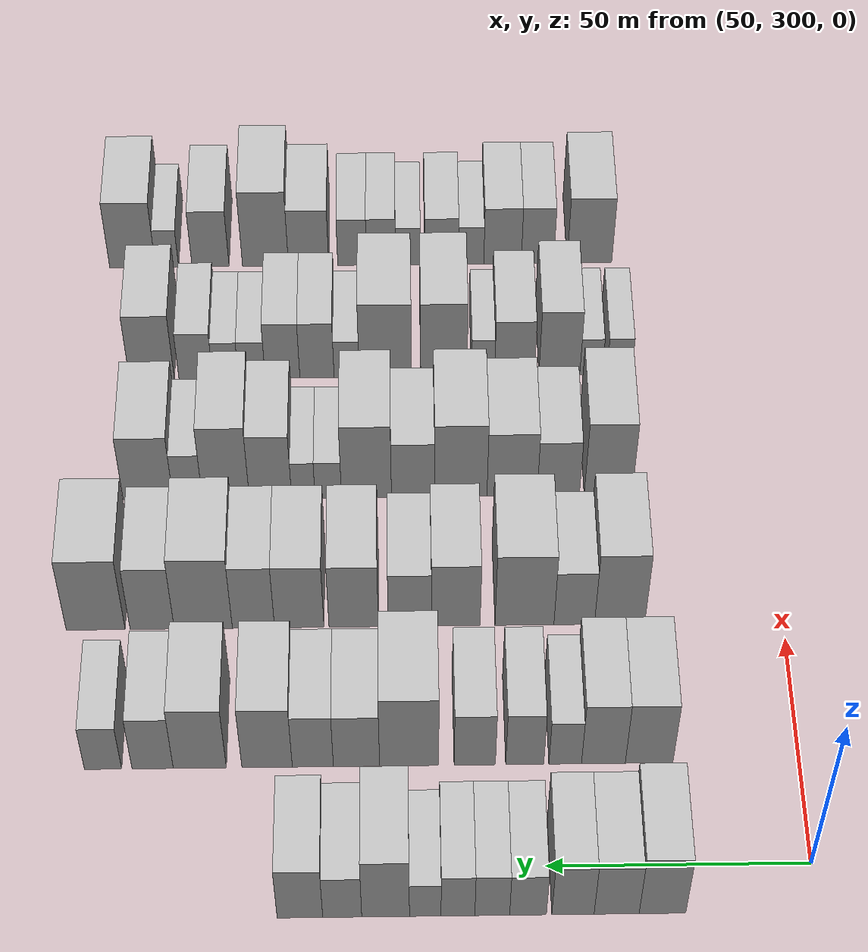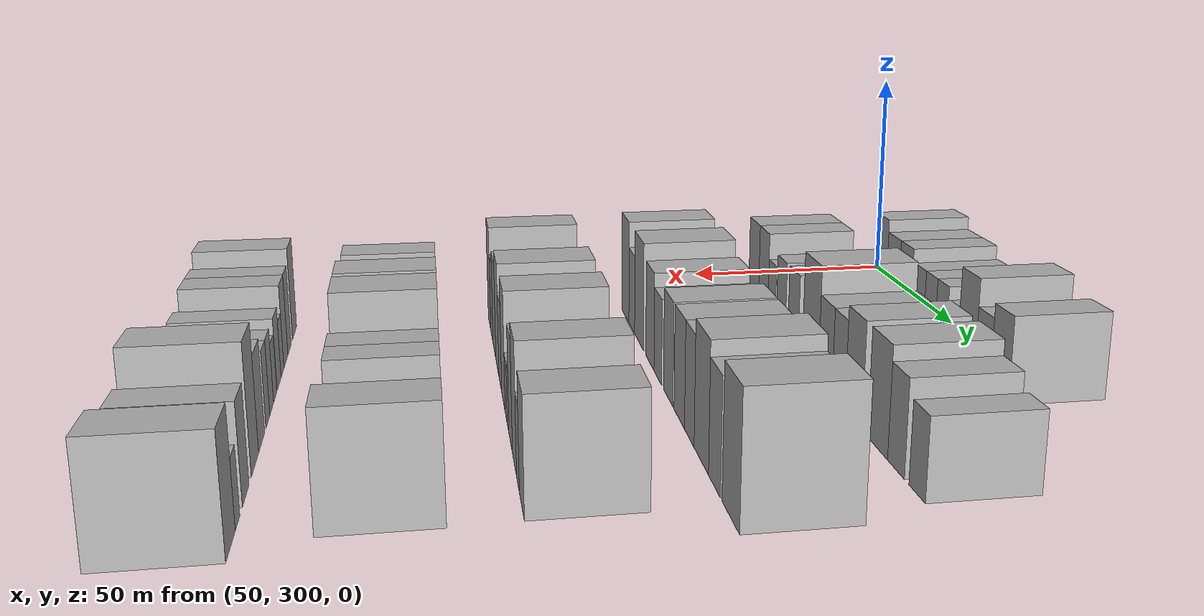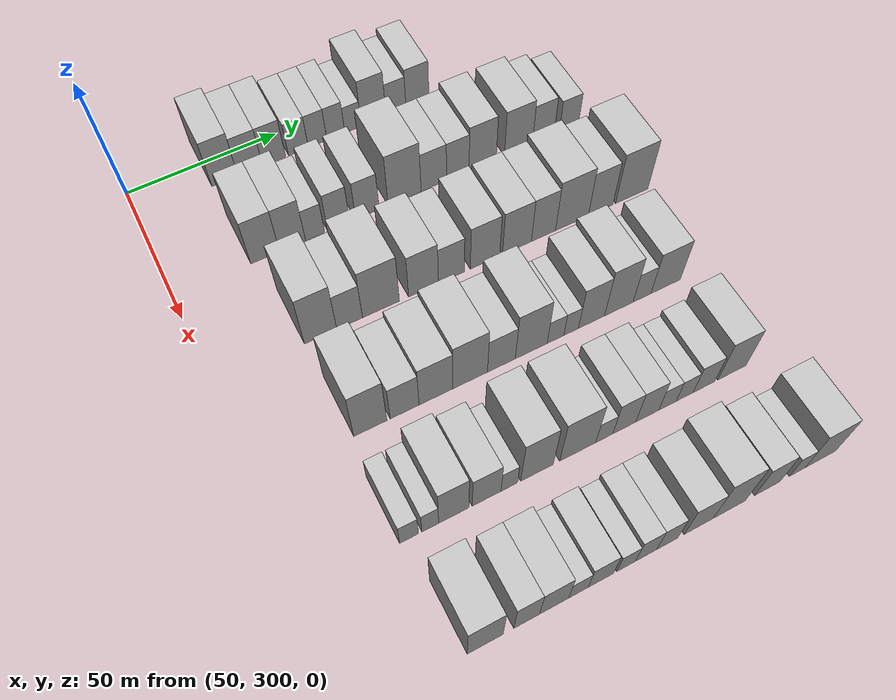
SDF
<sdf version="1.6">
 <world name="default">
  <model name="building_100">
   <static>1</static>
   <pose>50.0000 328.6975 0 0.000000 0.000000 0.000000</pose>
   <link name="link">
    <pose>0 0 10.50 0 0 0</pose>
    <collision name="collision"><geometry><box><size>20.0000 8.6695 21.0000</size></box></geometry></collision>
    <visual name="visual">
     <cast_shadows>0</cast_shadows>
     <geometry><box><size>20.0000 8.6695 21.0000</size></box></geometry>
     <material>
      <script>
       <uri>model://HANNAS_wall/materials/scripts</uri>
       <uri>model://HANNAS_wall/materials/textures</uri>
       <name>vrc/HANNAS_wall</name>
      </script>
     </material>
    </visual>
   </link>
  </model>
  <model name="building_101">
   <static>1</static>
   <pose>50.0000 337.2210 0 0.000000 0.000000 0.000000</pose>
   <link name="link">
    <pose>0 0 9.00 0 0 0</pose>
    <collision name="collision"><geometry><box><size>20.0000 8.3775 18.0000</size></box></geometry></collision>
    <visual name="visual">
     <cast_shadows>0</cast_shadows>
     <geometry><box><size>20.0000 8.3775 18.0000</size></box></geometry>
     <material>
      <script>
       <uri>model://HANNAS_wall/materials/scripts</uri>
       <uri>model://HANNAS_wall/materials/textures</uri>
       <name>vrc/HANNAS_wall</name>
      </script>
     </material>
    </visual>
   </link>
  </model>
  <model name="building_102">
   <static>1</static>
   <pose>50.0000 345.3370 0 0.000000 0.000000 0.000000</pose>
   <link name="link">
    <pose>0 0 9.00 0 0 0</pose>
    <collision name="collision"><geometry><box><size>20.0000 7.8543 18.0000</size></box></geometry></collision>
    <visual name="visual">
     <cast_shadows>0</cast_shadows>
     <geometry><box><size>20.0000 7.8543 18.0000</size></box></geometry>
     <material>
      <script>
       <uri>model://HANNAS_wall/materials/scripts</uri>
       <uri>model://HANNAS_wall/materials/textures</uri>
       <name>vrc/HANNAS_wall</name>
      </script>
     </material>
    </visual>
   </link>
  </model>
  <model name="building_103">
   <static>1</static>
   <pose>50.0000 353.6805 0 0.000000 0.000000 0.000000</pose>
   <link name="link">
    <pose>0 0 7.50 0 0 0</pose>
    <collision name="collision"><geometry><box><size>20.0000 6.8328 15.0000</size></box></geometry></collision>
    <visual name="visual">
     <cast_shadows>0</cast_shadows>
     <geometry><box><size>20.0000 6.8328 15.0000</size></box></geometry>
     <material>
      <script>
       <uri>model://HANNAS_wall/materials/scripts</uri>
       <uri>model://HANNAS_wall/materials/textures</uri>
       <name>vrc/HANNAS_wall</name>
      </script>
     </material>
    </visual>
   </link>
  </model>
  <model name="building_104">
   <static>1</static>
   <pose>50.0000 360.3275 0 0.000000 0.000000 0.000000</pose>
   <link name="link">
    <pose>0 0 7.50 0 0 0</pose>
    <collision name="collision"><geometry><box><size>20.0000 6.4612 15.0000</size></box></geometry></collision>
    <visual name="visual">
     <cast_shadows>0</cast_shadows>
     <geometry><box><size>20.0000 6.4612 15.0000</size></box></geometry>
     <material>
      <script>
       <uri>model://HANNAS_wall/materials/scripts</uri>
       <uri>model://HANNAS_wall/materials/textures</uri>
       <name>vrc/HANNAS_wall</name>
      </script>
     </material>
    </visual>
   </link>
  </model>
  <model name="building_105">
   <static>1</static>
   <pose>50.0000 366.6993 0 0.000000 0.000000 0.000000</pose>
   <link name="link">
    <pose>0 0 7.50 0 0 0</pose>
    <collision name="collision"><geometry><box><size>20.0000 6.2823 15.0000</size></box></geometry></collision>
    <visual name="visual">
     <cast_shadows>0</cast_shadows>
     <geometry><box><size>20.0000 6.2823 15.0000</size></box></geometry>
     <material>
      <script>
       <uri>model://HANNAS_wall/materials/scripts</uri>
       <uri>model://HANNAS_wall/materials/textures</uri>
       <name>vrc/HANNAS_wall</name>
      </script>
     </material>
    </visual>
   </link>
  </model>
  <model name="building_106">
   <static>1</static>
   <pose>50.0000 372.7689 0 0.000000 0.000000 0.000000</pose>
   <link name="link">
    <pose>0 0 6.00 0 0 0</pose>
    <collision name="collision"><geometry><box><size>20.0000 5.8569 12.0000</size></box></geometry></collision>
    <visual name="visual">
     <cast_shadows>0</cast_shadows>
     <geometry><box><size>20.0000 5.8569 12.0000</size></box></geometry>
     <material>
      <script>
       <uri>model://HANNAS_wall/materials/scripts</uri>
       <uri>model://HANNAS_wall/materials/textures</uri>
       <name>vrc/HANNAS_wall</name>
      </script>
     </material>
    </visual>
   </link>
  </model>
  <model name="building_107">
   <static>1</static>
   <pose>50.0000 380.1270 0 0.000000 0.000000 0.000000</pose>
   <link name="link">
    <pose>0 0 10.50 0 0 0</pose>
    <collision name="collision"><geometry><box><size>20.0000 8.8593 21.0000</size></box></geometry></collision>
    <visual name="visual">
     <cast_shadows>0</cast_shadows>
     <geometry><box><size>20.0000 8.8593 21.0000</size></box></geometry>
     <material>
      <script>
       <uri>model://HANNAS_wall/materials/scripts</uri>
       <uri>model://HANNAS_wall/materials/textures</uri>
       <name>vrc/HANNAS_wall</name>
      </script>
     </material>
    </visual>
   </link>
  </model>
  <model name="building_108">
   <static>1</static>
   <pose>50.0000 388.1756 0 0.000000 0.000000 0.000000</pose>
   <link name="link">
    <pose>0 0 7.50 0 0 0</pose>
    <collision name="collision"><geometry><box><size>20.0000 7.2377 15.0000</size></box></geometry></collision>
    <visual name="visual">
     <cast_shadows>0</cast_shadows>
     <geometry><box><size>20.0000 7.2377 15.0000</size></box></geometry>
     <material>
      <script>
       <uri>model://HANNAS_wall/materials/scripts</uri>
       <uri>model://HANNAS_wall/materials/textures</uri>
       <name>vrc/HANNAS_wall</name>
      </script>
     </material>
    </visual>
   </link>
  </model>
  <model name="building_109">
   <static>1</static>
   <pose>50.0000 396.0186 0 0.000000 0.000000 0.000000</pose>
   <link name="link">
    <pose>0 0 9.00 0 0 0</pose>
    <collision name="collision"><geometry><box><size>20.0000 8.4483 18.0000</size></box></geometry></collision>
    <visual name="visual">
     <cast_shadows>0</cast_shadows>
     <geometry><box><size>20.0000 8.4483 18.0000</size></box></geometry>
     <material>
      <script>
       <uri>model://HANNAS_wall/materials/scripts</uri>
       <uri>model://HANNAS_wall/materials/textures</uri>
       <name>vrc/HANNAS_wall</name>
      </script>
     </material>
    </visual>
   </link>
  </model>
  <model name="building_217">
   <static>1</static>
   <pose>82.0000 329.0815 0 0.000000 0.000000 0.000000</pose>
   <link name="link">
    <pose>0 0 10.50 0 0 0</pose>
    <collision name="collision"><geometry><box><size>20.0000 9.2128 21.0000</size></box></geometry></collision>
    <visual name="visual">
     <cast_shadows>0</cast_shadows>
     <geometry><box><size>20.0000 9.2128 21.0000</size></box></geometry>
     <material>
      <script>
       <uri>model://HANNAS_wall/materials/scripts</uri>
       <uri>model://HANNAS_wall/materials/textures</uri>
       <name>vrc/HANNAS_wall</name>
      </script>
     </material>
    </visual>
   </link>
  </model>
  <model name="building_218">
   <static>1</static>
   <pose>82.0000 337.9273 0 0.000000 0.000000 0.000000</pose>
   <link name="link">
    <pose>0 0 10.50 0 0 0</pose>
    <collision name="collision"><geometry><box><size>20.0000 8.4788 21.0000</size></box></geometry></collision>
    <visual name="visual">
     <cast_shadows>0</cast_shadows>
     <geometry><box><size>20.0000 8.4788 21.0000</size></box></geometry>
     <material>
      <script>
       <uri>model://HANNAS_wall/materials/scripts</uri>
       <uri>model://HANNAS_wall/materials/textures</uri>
       <name>vrc/HANNAS_wall</name>
      </script>
     </material>
    </visual>
   </link>
  </model>
  <model name="building_219">
   <static>1</static>
   <pose>82.0000 345.3121 0 0.000000 0.000000 0.000000</pose>
   <link name="link">
    <pose>0 0 7.50 0 0 0</pose>
    <collision name="collision"><geometry><box><size>20.0000 6.2908 15.0000</size></box></geometry></collision>
    <visual name="visual">
     <cast_shadows>0</cast_shadows>
     <geometry><box><size>20.0000 6.2908 15.0000</size></box></geometry>
     <material>
      <script>
       <uri>model://HANNAS_wall/materials/scripts</uri>
       <uri>model://HANNAS_wall/materials/textures</uri>
       <name>vrc/HANNAS_wall</name>
      </script>
     </material>
    </visual>
   </link>
  </model>
  <model name="building_220">
   <static>1</static>
   <pose>82.0000 353.1298 0 0.000000 0.000000 0.000000</pose>
   <link name="link">
    <pose>0 0 9.00 0 0 0</pose>
    <collision name="collision"><geometry><box><size>20.0000 7.3447 18.0000</size></box></geometry></collision>
    <visual name="visual">
     <cast_shadows>0</cast_shadows>
     <geometry><box><size>20.0000 7.3447 18.0000</size></box></geometry>
     <material>
      <script>
       <uri>model://HANNAS_wall/materials/scripts</uri>
       <uri>model://HANNAS_wall/materials/textures</uri>
       <name>vrc/HANNAS_wall</name>
      </script>
     </material>
    </visual>
   </link>
  </model>
  <model name="building_221">
   <static>1</static>
   <pose>82.0000 362.7860 0 0.000000 0.000000 0.000000</pose>
   <link name="link">
    <pose>0 0 9.00 0 0 0</pose>
    <collision name="collision"><geometry><box><size>20.0000 7.9676 18.0000</size></box></geometry></collision>
    <visual name="visual">
     <cast_shadows>0</cast_shadows>
     <geometry><box><size>20.0000 7.9676 18.0000</size></box></geometry>
     <material>
      <script>
       <uri>model://HANNAS_wall/materials/scripts</uri>
       <uri>model://HANNAS_wall/materials/textures</uri>
       <name>vrc/HANNAS_wall</name>
      </script>
     </material>
    </visual>
   </link>
  </model>
  <model name="building_222">
   <static>1</static>
   <pose>82.0000 375.4626 0 0.000000 0.000000 0.000000</pose>
   <link name="link">
    <pose>0 0 12.00 0 0 0</pose>
    <collision name="collision"><geometry><box><size>20.0000 11.3857 24.0000</size></box></geometry></collision>
    <visual name="visual">
     <cast_shadows>0</cast_shadows>
     <geometry><box><size>20.0000 11.3857 24.0000</size></box></geometry>
     <material>
      <script>
       <uri>model://HANNAS_wall/materials/scripts</uri>
       <uri>model://HANNAS_wall/materials/textures</uri>
       <name>vrc/HANNAS_wall</name>
      </script>
     </material>
    </visual>
   </link>
  </model>
  <model name="building_223">
   <static>1</static>
   <pose>82.0000 385.6222 0 0.000000 0.000000 0.000000</pose>
   <link name="link">
    <pose>0 0 9.00 0 0 0</pose>
    <collision name="collision"><geometry><box><size>20.0000 8.9335 18.0000</size></box></geometry></collision>
    <visual name="visual">
     <cast_shadows>0</cast_shadows>
     <geometry><box><size>20.0000 8.9335 18.0000</size></box></geometry>
     <material>
      <script>
       <uri>model://HANNAS_wall/materials/scripts</uri>
       <uri>model://HANNAS_wall/materials/textures</uri>
       <name>vrc/HANNAS_wall</name>
      </script>
     </material>
    </visual>
   </link>
  </model>
  <model name="building_224">
   <static>1</static>
   <pose>82.0000 394.0517 0 0.000000 0.000000 0.000000</pose>
   <link name="link">
    <pose>0 0 9.00 0 0 0</pose>
    <collision name="collision"><geometry><box><size>20.0000 7.9255 18.0000</size></box></geometry></collision>
    <visual name="visual">
     <cast_shadows>0</cast_shadows>
     <geometry><box><size>20.0000 7.9255 18.0000</size></box></geometry>
     <material>
      <script>
       <uri>model://HANNAS_wall/materials/scripts</uri>
       <uri>model://HANNAS_wall/materials/textures</uri>
       <name>vrc/HANNAS_wall</name>
      </script>
     </material>
    </visual>
   </link>
  </model>
  <model name="building_225">
   <static>1</static>
   <pose>82.0000 402.8791 0 0.000000 0.000000 0.000000</pose>
   <link name="link">
    <pose>0 0 10.50 0 0 0</pose>
    <collision name="collision"><geometry><box><size>20.0000 9.7292 21.0000</size></box></geometry></collision>
    <visual name="visual">
     <cast_shadows>0</cast_shadows>
     <geometry><box><size>20.0000 9.7292 21.0000</size></box></geometry>
     <material>
      <script>
       <uri>model://HANNAS_wall/materials/scripts</uri>
       <uri>model://HANNAS_wall/materials/textures</uri>
       <name>vrc/HANNAS_wall</name>
      </script>
     </material>
    </visual>
   </link>
  </model>
  <model name="building_226">
   <static>1</static>
   <pose>82.0000 415.8628 0 0.000000 0.000000 0.000000</pose>
   <link name="link">
    <pose>0 0 10.50 0 0 0</pose>
    <collision name="collision"><geometry><box><size>20.0000 10.2383 21.0000</size></box></geometry></collision>
    <visual name="visual">
     <cast_shadows>0</cast_shadows>
     <geometry><box><size>20.0000 10.2383 21.0000</size></box></geometry>
     <material>
      <script>
       <uri>model://HANNAS_wall/materials/scripts</uri>
       <uri>model://HANNAS_wall/materials/textures</uri>
       <name>vrc/HANNAS_wall</name>
      </script>
     </material>
    </visual>
   </link>
  </model>
  <model name="building_227">
   <static>1</static>
   <pose>82.0000 424.9639 0 0.000000 0.000000 0.000000</pose>
   <link name="link">
    <pose>0 0 9.00 0 0 0</pose>
    <collision name="collision"><geometry><box><size>20.0000 7.9639 18.0000</size></box></geometry></collision>
    <visual name="visual">
     <cast_shadows>0</cast_shadows>
     <geometry><box><size>20.0000 7.9639 18.0000</size></box></geometry>
     <material>
      <script>
       <uri>model://HANNAS_wall/materials/scripts</uri>
       <uri>model://HANNAS_wall/materials/textures</uri>
       <name>vrc/HANNAS_wall</name>
      </script>
     </material>
    </visual>
   </link>
  </model>
  <model name="building_228">
   <static>1</static>
   <pose>82.0000 434.5318 0 0.000000 0.000000 0.000000</pose>
   <link name="link">
    <pose>0 0 7.50 0 0 0</pose>
    <collision name="collision"><geometry><box><size>20.0000 7.1718 15.0000</size></box></geometry></collision>
    <visual name="visual">
     <cast_shadows>0</cast_shadows>
     <geometry><box><size>20.0000 7.1718 15.0000</size></box></geometry>
     <material>
      <script>
       <uri>model://HANNAS_wall/materials/scripts</uri>
       <uri>model://HANNAS_wall/materials/textures</uri>
       <name>vrc/HANNAS_wall</name>
      </script>
     </material>
    </visual>
   </link>
  </model>
  <model name="building_335">
   <static>1</static>
   <pose>114.0000 332.9110 0 0.000000 0.000000 0.000000</pose>
   <link name="link">
    <pose>0 0 12.00 0 0 0</pose>
    <collision name="collision"><geometry><box><size>20.0000 10.1101 24.0000</size></box></geometry></collision>
    <visual name="visual">
     <cast_shadows>0</cast_shadows>
     <geometry><box><size>20.0000 10.1101 24.0000</size></box></geometry>
     <material>
      <script>
       <uri>model://HANNAS_wall/materials/scripts</uri>
       <uri>model://HANNAS_wall/materials/textures</uri>
       <name>vrc/HANNAS_wall</name>
      </script>
     </material>
    </visual>
   </link>
  </model>
  <model name="building_336">
   <static>1</static>
   <pose>114.0000 342.0369 0 0.000000 0.000000 0.000000</pose>
   <link name="link">
    <pose>0 0 9.00 0 0 0</pose>
    <collision name="collision"><geometry><box><size>20.0000 8.1418 18.0000</size></box></geometry></collision>
    <visual name="visual">
     <cast_shadows>0</cast_shadows>
     <geometry><box><size>20.0000 8.1418 18.0000</size></box></geometry>
     <material>
      <script>
       <uri>model://HANNAS_wall/materials/scripts</uri>
       <uri>model://HANNAS_wall/materials/textures</uri>
       <name>vrc/HANNAS_wall</name>
      </script>
     </material>
    </visual>
   </link>
  </model>
  <model name="building_337">
   <static>1</static>
   <pose>114.0000 352.0219 0 0.000000 0.000000 0.000000</pose>
   <link name="link">
    <pose>0 0 12.00 0 0 0</pose>
    <collision name="collision"><geometry><box><size>20.0000 11.8281 24.0000</size></box></geometry></collision>
    <visual name="visual">
     <cast_shadows>0</cast_shadows>
     <geometry><box><size>20.0000 11.8281 24.0000</size></box></geometry>
     <material>
      <script>
       <uri>model://HANNAS_wall/materials/scripts</uri>
       <uri>model://HANNAS_wall/materials/textures</uri>
       <name>vrc/HANNAS_wall</name>
      </script>
     </material>
    </visual>
   </link>
  </model>
  <model name="building_338">
   <static>1</static>
   <pose>114.0000 365.8304 0 0.000000 0.000000 0.000000</pose>
   <link name="link">
    <pose>0 0 10.50 0 0 0</pose>
    <collision name="collision"><geometry><box><size>20.0000 9.7891 21.0000</size></box></geometry></collision>
    <visual name="visual">
     <cast_shadows>0</cast_shadows>
     <geometry><box><size>20.0000 9.7891 21.0000</size></box></geometry>
     <material>
      <script>
       <uri>model://HANNAS_wall/materials/scripts</uri>
       <uri>model://HANNAS_wall/materials/textures</uri>
       <name>vrc/HANNAS_wall</name>
      </script>
     </material>
    </visual>
   </link>
  </model>
  <model name="building_339">
   <static>1</static>
   <pose>114.0000 375.0302 0 0.000000 0.000000 0.000000</pose>
   <link name="link">
    <pose>0 0 9.00 0 0 0</pose>
    <collision name="collision"><geometry><box><size>20.0000 8.6104 18.0000</size></box></geometry></collision>
    <visual name="visual">
     <cast_shadows>0</cast_shadows>
     <geometry><box><size>20.0000 8.6104 18.0000</size></box></geometry>
     <material>
      <script>
       <uri>model://HANNAS_wall/materials/scripts</uri>
       <uri>model://HANNAS_wall/materials/textures</uri>
       <name>vrc/HANNAS_wall</name>
      </script>
     </material>
    </visual>
   </link>
  </model>
  <model name="building_340">
   <static>1</static>
   <pose>114.0000 386.2902 0 0.000000 0.000000 0.000000</pose>
   <link name="link">
    <pose>0 0 10.50 0 0 0</pose>
    <collision name="collision"><geometry><box><size>20.0000 9.9096 21.0000</size></box></geometry></collision>
    <visual name="visual">
     <cast_shadows>0</cast_shadows>
     <geometry><box><size>20.0000 9.9096 21.0000</size></box></geometry>
     <material>
      <script>
       <uri>model://HANNAS_wall/materials/scripts</uri>
       <uri>model://HANNAS_wall/materials/textures</uri>
       <name>vrc/HANNAS_wall</name>
      </script>
     </material>
    </visual>
   </link>
  </model>
  <model name="building_341">
   <static>1</static>
   <pose>114.0000 397.2032 0 0.000000 0.000000 0.000000</pose>
   <link name="link">
    <pose>0 0 10.50 0 0 0</pose>
    <collision name="collision"><geometry><box><size>20.0000 9.9166 21.0000</size></box></geometry></collision>
    <visual name="visual">
     <cast_shadows>0</cast_shadows>
     <geometry><box><size>20.0000 9.9166 21.0000</size></box></geometry>
     <material>
      <script>
       <uri>model://HANNAS_wall/materials/scripts</uri>
       <uri>model://HANNAS_wall/materials/textures</uri>
       <name>vrc/HANNAS_wall</name>
      </script>
     </material>
    </visual>
   </link>
  </model>
  <model name="building_342">
   <static>1</static>
   <pose>114.0000 406.3875 0 0.000000 0.000000 0.000000</pose>
   <link name="link">
    <pose>0 0 10.50 0 0 0</pose>
    <collision name="collision"><geometry><box><size>20.0000 8.4520 21.0000</size></box></geometry></collision>
    <visual name="visual">
     <cast_shadows>0</cast_shadows>
     <geometry><box><size>20.0000 8.4520 21.0000</size></box></geometry>
     <material>
      <script>
       <uri>model://HANNAS_wall/materials/scripts</uri>
       <uri>model://HANNAS_wall/materials/textures</uri>
       <name>vrc/HANNAS_wall</name>
      </script>
     </material>
    </visual>
   </link>
  </model>
  <model name="building_343">
   <static>1</static>
   <pose>114.0000 416.4410 0 0.000000 0.000000 0.000000</pose>
   <link name="link">
    <pose>0 0 12.00 0 0 0</pose>
    <collision name="collision"><geometry><box><size>20.0000 11.6551 24.0000</size></box></geometry></collision>
    <visual name="visual">
     <cast_shadows>0</cast_shadows>
     <geometry><box><size>20.0000 11.6551 24.0000</size></box></geometry>
     <material>
      <script>
       <uri>model://HANNAS_wall/materials/scripts</uri>
       <uri>model://HANNAS_wall/materials/textures</uri>
       <name>vrc/HANNAS_wall</name>
      </script>
     </material>
    </visual>
   </link>
  </model>
  <model name="building_344">
   <static>1</static>
   <pose>114.0000 426.6911 0 0.000000 0.000000 0.000000</pose>
   <link name="link">
    <pose>0 0 10.50 0 0 0</pose>
    <collision name="collision"><geometry><box><size>20.0000 8.8450 21.0000</size></box></geometry></collision>
    <visual name="visual">
     <cast_shadows>0</cast_shadows>
     <geometry><box><size>20.0000 8.8450 21.0000</size></box></geometry>
     <material>
      <script>
       <uri>model://HANNAS_wall/materials/scripts</uri>
       <uri>model://HANNAS_wall/materials/textures</uri>
       <name>vrc/HANNAS_wall</name>
      </script>
     </material>
    </visual>
   </link>
  </model>
  <model name="building_345">
   <static>1</static>
   <pose>114.0000 438.0168 0 0.000000 0.000000 0.000000</pose>
   <link name="link">
    <pose>0 0 12.00 0 0 0</pose>
    <collision name="collision"><geometry><box><size>20.0000 11.8065 24.0000</size></box></geometry></collision>
    <visual name="visual">
     <cast_shadows>0</cast_shadows>
     <geometry><box><size>20.0000 11.8065 24.0000</size></box></geometry>
     <material>
      <script>
       <uri>model://HANNAS_wall/materials/scripts</uri>
       <uri>model://HANNAS_wall/materials/textures</uri>
       <name>vrc/HANNAS_wall</name>
      </script>
     </material>
    </visual>
   </link>
  </model>
  <model name="building_453">
   <static>1</static>
   <pose>146.0000 333.4234 0 0.000000 0.000000 0.000000</pose>
   <link name="link">
    <pose>0 0 12.00 0 0 0</pose>
    <collision name="collision"><geometry><box><size>20.0000 9.9732 24.0000</size></box></geometry></collision>
    <visual name="visual">
     <cast_shadows>0</cast_shadows>
     <geometry><box><size>20.0000 9.9732 24.0000</size></box></geometry>
     <material>
      <script>
       <uri>model://HANNAS_wall/materials/scripts</uri>
       <uri>model://HANNAS_wall/materials/textures</uri>
       <name>vrc/HANNAS_wall</name>
      </script>
     </material>
    </visual>
   </link>
  </model>
  <model name="building_454">
   <static>1</static>
   <pose>146.0000 343.8095 0 0.000000 0.000000 0.000000</pose>
   <link name="link">
    <pose>0 0 9.00 0 0 0</pose>
    <collision name="collision"><geometry><box><size>20.0000 8.7991 18.0000</size></box></geometry></collision>
    <visual name="visual">
     <cast_shadows>0</cast_shadows>
     <geometry><box><size>20.0000 8.7991 18.0000</size></box></geometry>
     <material>
      <script>
       <uri>model://HANNAS_wall/materials/scripts</uri>
       <uri>model://HANNAS_wall/materials/textures</uri>
       <name>vrc/HANNAS_wall</name>
      </script>
     </material>
    </visual>
   </link>
  </model>
  <model name="building_455">
   <static>1</static>
   <pose>146.0000 353.4447 0 0.000000 0.000000 0.000000</pose>
   <link name="link">
    <pose>0 0 10.50 0 0 0</pose>
    <collision name="collision"><geometry><box><size>20.0000 10.4712 21.0000</size></box></geometry></collision>
    <visual name="visual">
     <cast_shadows>0</cast_shadows>
     <geometry><box><size>20.0000 10.4712 21.0000</size></box></geometry>
     <material>
      <script>
       <uri>model://HANNAS_wall/materials/scripts</uri>
       <uri>model://HANNAS_wall/materials/textures</uri>
       <name>vrc/HANNAS_wall</name>
      </script>
     </material>
    </visual>
   </link>
  </model>
  <model name="building_456">
   <static>1</static>
   <pose>146.0000 364.1417 0 0.000000 0.000000 0.000000</pose>
   <link name="link">
    <pose>0 0 12.00 0 0 0</pose>
    <collision name="collision"><geometry><box><size>20.0000 10.9227 24.0000</size></box></geometry></collision>
    <visual name="visual">
     <cast_shadows>0</cast_shadows>
     <geometry><box><size>20.0000 10.9227 24.0000</size></box></geometry>
     <material>
      <script>
       <uri>model://HANNAS_wall/materials/scripts</uri>
       <uri>model://HANNAS_wall/materials/textures</uri>
       <name>vrc/HANNAS_wall</name>
      </script>
     </material>
    </visual>
   </link>
  </model>
  <model name="building_457">
   <static>1</static>
   <pose>146.0000 374.0794 0 0.000000 0.000000 0.000000</pose>
   <link name="link">
    <pose>0 0 9.00 0 0 0</pose>
    <collision name="collision"><geometry><box><size>20.0000 8.9527 18.0000</size></box></geometry></collision>
    <visual name="visual">
     <cast_shadows>0</cast_shadows>
     <geometry><box><size>20.0000 8.9527 18.0000</size></box></geometry>
     <material>
      <script>
       <uri>model://HANNAS_wall/materials/scripts</uri>
       <uri>model://HANNAS_wall/materials/textures</uri>
       <name>vrc/HANNAS_wall</name>
      </script>
     </material>
    </visual>
   </link>
  </model>
  <model name="building_458">
   <static>1</static>
   <pose>146.0000 383.7531 0 0.000000 0.000000 0.000000</pose>
   <link name="link">
    <pose>0 0 12.00 0 0 0</pose>
    <collision name="collision"><geometry><box><size>20.0000 10.3947 24.0000</size></box></geometry></collision>
    <visual name="visual">
     <cast_shadows>0</cast_shadows>
     <geometry><box><size>20.0000 10.3947 24.0000</size></box></geometry>
     <material>
      <script>
       <uri>model://HANNAS_wall/materials/scripts</uri>
       <uri>model://HANNAS_wall/materials/textures</uri>
       <name>vrc/HANNAS_wall</name>
      </script>
     </material>
    </visual>
   </link>
  </model>
  <model name="building_459">
   <static>1</static>
   <pose>146.0000 391.7022 0 0.000000 0.000000 0.000000</pose>
   <link name="link">
    <pose>0 0 6.00 0 0 0</pose>
    <collision name="collision"><geometry><box><size>20.0000 5.5035 12.0000</size></box></geometry></collision>
    <visual name="visual">
     <cast_shadows>0</cast_shadows>
     <geometry><box><size>20.0000 5.5035 12.0000</size></box></geometry>
     <material>
      <script>
       <uri>model://HANNAS_wall/materials/scripts</uri>
       <uri>model://HANNAS_wall/materials/textures</uri>
       <name>vrc/HANNAS_wall</name>
      </script>
     </material>
    </visual>
   </link>
  </model>
  <model name="building_460">
   <static>1</static>
   <pose>146.0000 396.8880 0 0.000000 0.000000 0.000000</pose>
   <link name="link">
    <pose>0 0 6.00 0 0 0</pose>
    <collision name="collision"><geometry><box><size>20.0000 4.8681 12.0000</size></box></geometry></collision>
    <visual name="visual">
     <cast_shadows>0</cast_shadows>
     <geometry><box><size>20.0000 4.8681 12.0000</size></box></geometry>
     <material>
      <script>
       <uri>model://HANNAS_wall/materials/scripts</uri>
       <uri>model://HANNAS_wall/materials/textures</uri>
       <name>vrc/HANNAS_wall</name>
      </script>
     </material>
    </visual>
   </link>
  </model>
  <model name="building_461">
   <static>1</static>
   <pose>146.0000 403.7211 0 0.000000 0.000000 0.000000</pose>
   <link name="link">
    <pose>0 0 10.50 0 0 0</pose>
    <collision name="collision"><geometry><box><size>20.0000 8.7981 21.0000</size></box></geometry></collision>
    <visual name="visual">
     <cast_shadows>0</cast_shadows>
     <geometry><box><size>20.0000 8.7981 21.0000</size></box></geometry>
     <material>
      <script>
       <uri>model://HANNAS_wall/materials/scripts</uri>
       <uri>model://HANNAS_wall/materials/textures</uri>
       <name>vrc/HANNAS_wall</name>
      </script>
     </material>
    </visual>
   </link>
  </model>
  <model name="building_462">
   <static>1</static>
   <pose>146.0000 413.0103 0 0.000000 0.000000 0.000000</pose>
   <link name="link">
    <pose>0 0 12.00 0 0 0</pose>
    <collision name="collision"><geometry><box><size>20.0000 9.7803 24.0000</size></box></geometry></collision>
    <visual name="visual">
     <cast_shadows>0</cast_shadows>
     <geometry><box><size>20.0000 9.7803 24.0000</size></box></geometry>
     <material>
      <script>
       <uri>model://HANNAS_wall/materials/scripts</uri>
       <uri>model://HANNAS_wall/materials/textures</uri>
       <name>vrc/HANNAS_wall</name>
      </script>
     </material>
    </visual>
   </link>
  </model>
  <model name="building_463">
   <static>1</static>
   <pose>146.0000 420.9390 0 0.000000 0.000000 0.000000</pose>
   <link name="link">
    <pose>0 0 7.50 0 0 0</pose>
    <collision name="collision"><geometry><box><size>20.0000 6.0770 15.0000</size></box></geometry></collision>
    <visual name="visual">
     <cast_shadows>0</cast_shadows>
     <geometry><box><size>20.0000 6.0770 15.0000</size></box></geometry>
     <material>
      <script>
       <uri>model://HANNAS_wall/materials/scripts</uri>
       <uri>model://HANNAS_wall/materials/textures</uri>
       <name>vrc/HANNAS_wall</name>
      </script>
     </material>
    </visual>
   </link>
  </model>
  <model name="building_464">
   <static>1</static>
   <pose>146.0000 429.1658 0 0.000000 0.000000 0.000000</pose>
   <link name="link">
    <pose>0 0 10.50 0 0 0</pose>
    <collision name="collision"><geometry><box><size>20.0000 10.3766 21.0000</size></box></geometry></collision>
    <visual name="visual">
     <cast_shadows>0</cast_shadows>
     <geometry><box><size>20.0000 10.3766 21.0000</size></box></geometry>
     <material>
      <script>
       <uri>model://HANNAS_wall/materials/scripts</uri>
       <uri>model://HANNAS_wall/materials/textures</uri>
       <name>vrc/HANNAS_wall</name>
      </script>
     </material>
    </visual>
   </link>
  </model>
  <model name="building_566">
   <static>1</static>
   <pose>178.0000 329.2283 0 0.000000 0.000000 0.000000</pose>
   <link name="link">
    <pose>0 0 6.00 0 0 0</pose>
    <collision name="collision"><geometry><box><size>20.0000 5.3661 12.0000</size></box></geometry></collision>
    <visual name="visual">
     <cast_shadows>0</cast_shadows>
     <geometry><box><size>20.0000 5.3661 12.0000</size></box></geometry>
     <material>
      <script>
       <uri>model://HANNAS_wall/materials/scripts</uri>
       <uri>model://HANNAS_wall/materials/textures</uri>
       <name>vrc/HANNAS_wall</name>
      </script>
     </material>
    </visual>
   </link>
  </model>
  <model name="building_567">
   <static>1</static>
   <pose>178.0000 335.3362 0 0.000000 0.000000 0.000000</pose>
   <link name="link">
    <pose>0 0 6.00 0 0 0</pose>
    <collision name="collision"><geometry><box><size>20.0000 4.8497 12.0000</size></box></geometry></collision>
    <visual name="visual">
     <cast_shadows>0</cast_shadows>
     <geometry><box><size>20.0000 4.8497 12.0000</size></box></geometry>
     <material>
      <script>
       <uri>model://HANNAS_wall/materials/scripts</uri>
       <uri>model://HANNAS_wall/materials/textures</uri>
       <name>vrc/HANNAS_wall</name>
      </script>
     </material>
    </visual>
   </link>
  </model>
  <model name="building_568">
   <static>1</static>
   <pose>178.0000 342.1674 0 0.000000 0.000000 0.000000</pose>
   <link name="link">
    <pose>0 0 10.50 0 0 0</pose>
    <collision name="collision"><geometry><box><size>20.0000 8.8128 21.0000</size></box></geometry></collision>
    <visual name="visual">
     <cast_shadows>0</cast_shadows>
     <geometry><box><size>20.0000 8.8128 21.0000</size></box></geometry>
     <material>
      <script>
       <uri>model://HANNAS_wall/materials/scripts</uri>
       <uri>model://HANNAS_wall/materials/textures</uri>
       <name>vrc/HANNAS_wall</name>
      </script>
     </material>
    </visual>
   </link>
  </model>
  <model name="building_569">
   <static>1</static>
   <pose>178.0000 351.8618 0 0.000000 0.000000 0.000000</pose>
   <link name="link">
    <pose>0 0 9.00 0 0 0</pose>
    <collision name="collision"><geometry><box><size>20.0000 8.5759 18.0000</size></box></geometry></collision>
    <visual name="visual">
     <cast_shadows>0</cast_shadows>
     <geometry><box><size>20.0000 8.5759 18.0000</size></box></geometry>
     <material>
      <script>
       <uri>model://HANNAS_wall/materials/scripts</uri>
       <uri>model://HANNAS_wall/materials/textures</uri>
       <name>vrc/HANNAS_wall</name>
      </script>
     </material>
    </visual>
   </link>
  </model>
  <model name="building_570">
   <static>1</static>
   <pose>178.0000 358.6403 0 0.000000 0.000000 0.000000</pose>
   <link name="link">
    <pose>0 0 6.00 0 0 0</pose>
    <collision name="collision"><geometry><box><size>20.0000 4.9813 12.0000</size></box></geometry></collision>
    <visual name="visual">
     <cast_shadows>0</cast_shadows>
     <geometry><box><size>20.0000 4.9813 12.0000</size></box></geometry>
     <material>
      <script>
       <uri>model://HANNAS_wall/materials/scripts</uri>
       <uri>model://HANNAS_wall/materials/textures</uri>
       <name>vrc/HANNAS_wall</name>
      </script>
     </material>
    </visual>
   </link>
  </model>
  <model name="building_571">
   <static>1</static>
   <pose>178.0000 367.1060 0 0.000000 0.000000 0.000000</pose>
   <link name="link">
    <pose>0 0 12.00 0 0 0</pose>
    <collision name="collision"><geometry><box><size>20.0000 9.9500 24.0000</size></box></geometry></collision>
    <visual name="visual">
     <cast_shadows>0</cast_shadows>
     <geometry><box><size>20.0000 9.9500 24.0000</size></box></geometry>
     <material>
      <script>
       <uri>model://HANNAS_wall/materials/scripts</uri>
       <uri>model://HANNAS_wall/materials/textures</uri>
       <name>vrc/HANNAS_wall</name>
      </script>
     </material>
    </visual>
   </link>
  </model>
  <model name="building_572">
   <static>1</static>
   <pose>178.0000 379.7084 0 0.000000 0.000000 0.000000</pose>
   <link name="link">
    <pose>0 0 12.00 0 0 0</pose>
    <collision name="collision"><geometry><box><size>20.0000 11.2548 24.0000</size></box></geometry></collision>
    <visual name="visual">
     <cast_shadows>0</cast_shadows>
     <geometry><box><size>20.0000 11.2548 24.0000</size></box></geometry>
     <material>
      <script>
       <uri>model://HANNAS_wall/materials/scripts</uri>
       <uri>model://HANNAS_wall/materials/textures</uri>
       <name>vrc/HANNAS_wall</name>
      </script>
     </material>
    </visual>
   </link>
  </model>
  <model name="building_573">
   <static>1</static>
   <pose>178.0000 388.0481 0 0.000000 0.000000 0.000000</pose>
   <link name="link">
    <pose>0 0 6.00 0 0 0</pose>
    <collision name="collision"><geometry><box><size>20.0000 5.4247 12.0000</size></box></geometry></collision>
    <visual name="visual">
     <cast_shadows>0</cast_shadows>
     <geometry><box><size>20.0000 5.4247 12.0000</size></box></geometry>
     <material>
      <script>
       <uri>model://HANNAS_wall/materials/scripts</uri>
       <uri>model://HANNAS_wall/materials/textures</uri>
       <name>vrc/HANNAS_wall</name>
      </script>
     </material>
    </visual>
   </link>
  </model>
  <model name="building_574">
   <static>1</static>
   <pose>178.0000 394.4487 0 0.000000 0.000000 0.000000</pose>
   <link name="link">
    <pose>0 0 9.00 0 0 0</pose>
    <collision name="collision"><geometry><box><size>20.0000 7.3765 18.0000</size></box></geometry></collision>
    <visual name="visual">
     <cast_shadows>0</cast_shadows>
     <geometry><box><size>20.0000 7.3765 18.0000</size></box></geometry>
     <material>
      <script>
       <uri>model://HANNAS_wall/materials/scripts</uri>
       <uri>model://HANNAS_wall/materials/textures</uri>
       <name>vrc/HANNAS_wall</name>
      </script>
     </material>
    </visual>
   </link>
  </model>
  <model name="building_575">
   <static>1</static>
   <pose>178.0000 401.8705 0 0.000000 0.000000 0.000000</pose>
   <link name="link">
    <pose>0 0 9.00 0 0 0</pose>
    <collision name="collision"><geometry><box><size>20.0000 7.4671 18.0000</size></box></geometry></collision>
    <visual name="visual">
     <cast_shadows>0</cast_shadows>
     <geometry><box><size>20.0000 7.4671 18.0000</size></box></geometry>
     <material>
      <script>
       <uri>model://HANNAS_wall/materials/scripts</uri>
       <uri>model://HANNAS_wall/materials/textures</uri>
       <name>vrc/HANNAS_wall</name>
      </script>
     </material>
    </visual>
   </link>
  </model>
  <model name="building_576">
   <static>1</static>
   <pose>178.0000 408.4928 0 0.000000 0.000000 0.000000</pose>
   <link name="link">
    <pose>0 0 6.00 0 0 0</pose>
    <collision name="collision"><geometry><box><size>20.0000 5.7776 12.0000</size></box></geometry></collision>
    <visual name="visual">
     <cast_shadows>0</cast_shadows>
     <geometry><box><size>20.0000 5.7776 12.0000</size></box></geometry>
     <material>
      <script>
       <uri>model://HANNAS_wall/materials/scripts</uri>
       <uri>model://HANNAS_wall/materials/textures</uri>
       <name>vrc/HANNAS_wall</name>
      </script>
     </material>
    </visual>
   </link>
  </model>
  <model name="building_577">
   <static>1</static>
   <pose>178.0000 414.1475 0 0.000000 0.000000 0.000000</pose>
   <link name="link">
    <pose>0 0 6.00 0 0 0</pose>
    <collision name="collision"><geometry><box><size>20.0000 5.5317 12.0000</size></box></geometry></collision>
    <visual name="visual">
     <cast_shadows>0</cast_shadows>
     <geometry><box><size>20.0000 5.5317 12.0000</size></box></geometry>
     <material>
      <script>
       <uri>model://HANNAS_wall/materials/scripts</uri>
       <uri>model://HANNAS_wall/materials/textures</uri>
       <name>vrc/HANNAS_wall</name>
      </script>
     </material>
    </visual>
   </link>
  </model>
  <model name="building_578">
   <static>1</static>
   <pose>178.0000 420.5567 0 0.000000 0.000000 0.000000</pose>
   <link name="link">
    <pose>0 0 7.50 0 0 0</pose>
    <collision name="collision"><geometry><box><size>20.0000 7.2867 15.0000</size></box></geometry></collision>
    <visual name="visual">
     <cast_shadows>0</cast_shadows>
     <geometry><box><size>20.0000 7.2867 15.0000</size></box></geometry>
     <material>
      <script>
       <uri>model://HANNAS_wall/materials/scripts</uri>
       <uri>model://HANNAS_wall/materials/textures</uri>
       <name>vrc/HANNAS_wall</name>
      </script>
     </material>
    </visual>
   </link>
  </model>
  <model name="building_579">
   <static>1</static>
   <pose>178.0000 430.0321 0 0.000000 0.000000 0.000000</pose>
   <link name="link">
    <pose>0 0 10.50 0 0 0</pose>
    <collision name="collision"><geometry><box><size>20.0000 9.6642 21.0000</size></box></geometry></collision>
    <visual name="visual">
     <cast_shadows>0</cast_shadows>
     <geometry><box><size>20.0000 9.6642 21.0000</size></box></geometry>
     <material>
      <script>
       <uri>model://HANNAS_wall/materials/scripts</uri>
       <uri>model://HANNAS_wall/materials/textures</uri>
       <name>vrc/HANNAS_wall</name>
      </script>
     </material>
    </visual>
   </link>
  </model>
  <model name="building_689">
   <static>1</static>
   <pose>210.0000 334.0207 0 0.000000 0.000000 0.000000</pose>
   <link name="link">
    <pose>0 0 10.50 0 0 0</pose>
    <collision name="collision"><geometry><box><size>20.0000 9.9661 21.0000</size></box></geometry></collision>
    <visual name="visual">
     <cast_shadows>0</cast_shadows>
     <geometry><box><size>20.0000 9.9661 21.0000</size></box></geometry>
     <material>
      <script>
       <uri>model://HANNAS_wall/materials/scripts</uri>
       <uri>model://HANNAS_wall/materials/textures</uri>
       <name>vrc/HANNAS_wall</name>
      </script>
     </material>
    </visual>
   </link>
  </model>
  <model name="building_690">
   <static>1</static>
   <pose>210.0000 345.6334 0 0.000000 0.000000 0.000000</pose>
   <link name="link">
    <pose>0 0 9.00 0 0 0</pose>
    <collision name="collision"><geometry><box><size>20.0000 7.2591 18.0000</size></box></geometry></collision>
    <visual name="visual">
     <cast_shadows>0</cast_shadows>
     <geometry><box><size>20.0000 7.2591 18.0000</size></box></geometry>
     <material>
      <script>
       <uri>model://HANNAS_wall/materials/scripts</uri>
       <uri>model://HANNAS_wall/materials/textures</uri>
       <name>vrc/HANNAS_wall</name>
      </script>
     </material>
    </visual>
   </link>
  </model>
  <model name="building_691">
   <static>1</static>
   <pose>210.0000 353.4470 0 0.000000 0.000000 0.000000</pose>
   <link name="link">
    <pose>0 0 9.00 0 0 0</pose>
    <collision name="collision"><geometry><box><size>20.0000 8.3681 18.0000</size></box></geometry></collision>
    <visual name="visual">
     <cast_shadows>0</cast_shadows>
     <geometry><box><size>20.0000 8.3681 18.0000</size></box></geometry>
     <material>
      <script>
       <uri>model://HANNAS_wall/materials/scripts</uri>
       <uri>model://HANNAS_wall/materials/textures</uri>
       <name>vrc/HANNAS_wall</name>
      </script>
     </material>
    </visual>
   </link>
  </model>
  <model name="building_692">
   <static>1</static>
   <pose>210.0000 360.4672 0 0.000000 0.000000 0.000000</pose>
   <link name="link">
    <pose>0 0 6.00 0 0 0</pose>
    <collision name="collision"><geometry><box><size>20.0000 5.6723 12.0000</size></box></geometry></collision>
    <visual name="visual">
     <cast_shadows>0</cast_shadows>
     <geometry><box><size>20.0000 5.6723 12.0000</size></box></geometry>
     <material>
      <script>
       <uri>model://HANNAS_wall/materials/scripts</uri>
       <uri>model://HANNAS_wall/materials/textures</uri>
       <name>vrc/HANNAS_wall</name>
      </script>
     </material>
    </visual>
   </link>
  </model>
  <model name="building_693">
   <static>1</static>
   <pose>210.0000 367.0463 0 0.000000 0.000000 0.000000</pose>
   <link name="link">
    <pose>0 0 7.50 0 0 0</pose>
    <collision name="collision"><geometry><box><size>20.0000 7.4858 15.0000</size></box></geometry></collision>
    <visual name="visual">
     <cast_shadows>0</cast_shadows>
     <geometry><box><size>20.0000 7.4858 15.0000</size></box></geometry>
     <material>
      <script>
       <uri>model://HANNAS_wall/materials/scripts</uri>
       <uri>model://HANNAS_wall/materials/textures</uri>
       <name>vrc/HANNAS_wall</name>
      </script>
     </material>
    </visual>
   </link>
  </model>
  <model name="building_694">
   <static>1</static>
   <pose>210.0000 374.5496 0 0.000000 0.000000 0.000000</pose>
   <link name="link">
    <pose>0 0 6.00 0 0 0</pose>
    <collision name="collision"><geometry><box><size>20.0000 5.5207 12.0000</size></box></geometry></collision>
    <visual name="visual">
     <cast_shadows>0</cast_shadows>
     <geometry><box><size>20.0000 5.5207 12.0000</size></box></geometry>
     <material>
      <script>
       <uri>model://HANNAS_wall/materials/scripts</uri>
       <uri>model://HANNAS_wall/materials/textures</uri>
       <name>vrc/HANNAS_wall</name>
      </script>
     </material>
    </visual>
   </link>
  </model>
  <model name="building_695">
   <static>1</static>
   <pose>210.0000 380.5451 0 0.000000 0.000000 0.000000</pose>
   <link name="link">
    <pose>0 0 7.50 0 0 0</pose>
    <collision name="collision"><geometry><box><size>20.0000 6.4703 15.0000</size></box></geometry></collision>
    <visual name="visual">
     <cast_shadows>0</cast_shadows>
     <geometry><box><size>20.0000 6.4703 15.0000</size></box></geometry>
     <material>
      <script>
       <uri>model://HANNAS_wall/materials/scripts</uri>
       <uri>model://HANNAS_wall/materials/textures</uri>
       <name>vrc/HANNAS_wall</name>
      </script>
     </material>
    </visual>
   </link>
  </model>
  <model name="building_696">
   <static>1</static>
   <pose>210.0000 387.0003 0 0.000000 0.000000 0.000000</pose>
   <link name="link">
    <pose>0 0 7.50 0 0 0</pose>
    <collision name="collision"><geometry><box><size>20.0000 6.4403 15.0000</size></box></geometry></collision>
    <visual name="visual">
     <cast_shadows>0</cast_shadows>
     <geometry><box><size>20.0000 6.4403 15.0000</size></box></geometry>
     <material>
      <script>
       <uri>model://HANNAS_wall/materials/scripts</uri>
       <uri>model://HANNAS_wall/materials/textures</uri>
       <name>vrc/HANNAS_wall</name>
      </script>
     </material>
    </visual>
   </link>
  </model>
  <model name="building_697">
   <static>1</static>
   <pose>210.0000 396.7182 0 0.000000 0.000000 0.000000</pose>
   <link name="link">
    <pose>0 0 9.00 0 0 0</pose>
    <collision name="collision"><geometry><box><size>20.0000 8.9953 18.0000</size></box></geometry></collision>
    <visual name="visual">
     <cast_shadows>0</cast_shadows>
     <geometry><box><size>20.0000 8.9953 18.0000</size></box></geometry>
     <material>
      <script>
       <uri>model://HANNAS_wall/materials/scripts</uri>
       <uri>model://HANNAS_wall/materials/textures</uri>
       <name>vrc/HANNAS_wall</name>
      </script>
     </material>
    </visual>
   </link>
  </model>
  <model name="building_698">
   <static>1</static>
   <pose>210.0000 406.3386 0 0.000000 0.000000 0.000000</pose>
   <link name="link">
    <pose>0 0 12.00 0 0 0</pose>
    <collision name="collision"><geometry><box><size>20.0000 10.2457 24.0000</size></box></geometry></collision>
    <visual name="visual">
     <cast_shadows>0</cast_shadows>
     <geometry><box><size>20.0000 10.2457 24.0000</size></box></geometry>
     <material>
      <script>
       <uri>model://HANNAS_wall/materials/scripts</uri>
       <uri>model://HANNAS_wall/materials/textures</uri>
       <name>vrc/HANNAS_wall</name>
      </script>
     </material>
    </visual>
   </link>
  </model>
  <model name="building_699">
   <static>1</static>
   <pose>210.0000 418.5922 0 0.000000 0.000000 0.000000</pose>
   <link name="link">
    <pose>0 0 9.00 0 0 0</pose>
    <collision name="collision"><geometry><box><size>20.0000 8.2614 18.0000</size></box></geometry></collision>
    <visual name="visual">
     <cast_shadows>0</cast_shadows>
     <geometry><box><size>20.0000 8.2614 18.0000</size></box></geometry>
     <material>
      <script>
       <uri>model://HANNAS_wall/materials/scripts</uri>
       <uri>model://HANNAS_wall/materials/textures</uri>
       <name>vrc/HANNAS_wall</name>
      </script>
     </material>
    </visual>
   </link>
  </model>
  <model name="building_700">
   <static>1</static>
   <pose>210.0000 428.2985 0 0.000000 0.000000 0.000000</pose>
   <link name="link">
    <pose>0 0 6.00 0 0 0</pose>
    <collision name="collision"><geometry><box><size>20.0000 5.1513 12.0000</size></box></geometry></collision>
    <visual name="visual">
     <cast_shadows>0</cast_shadows>
     <geometry><box><size>20.0000 5.1513 12.0000</size></box></geometry>
     <material>
      <script>
       <uri>model://HANNAS_wall/materials/scripts</uri>
       <uri>model://HANNAS_wall/materials/textures</uri>
       <name>vrc/HANNAS_wall</name>
      </script>
     </material>
    </visual>
   </link>
  </model>
  <model name="building_701">
   <static>1</static>
   <pose>210.0000 435.9800 0 0.000000 0.000000 0.000000</pose>
   <link name="link">
    <pose>0 0 10.50 0 0 0</pose>
    <collision name="collision"><geometry><box><size>20.0000 10.2117 21.0000</size></box></geometry></collision>
    <visual name="visual">
     <cast_shadows>0</cast_shadows>
     <geometry><box><size>20.0000 10.2117 21.0000</size></box></geometry>
     <material>
      <script>
       <uri>model://HANNAS_wall/materials/scripts</uri>
       <uri>model://HANNAS_wall/materials/textures</uri>
       <name>vrc/HANNAS_wall</name>
      </script>
     </material>
    </visual>
   </link>
  </model>
 </world>
</sdf>
